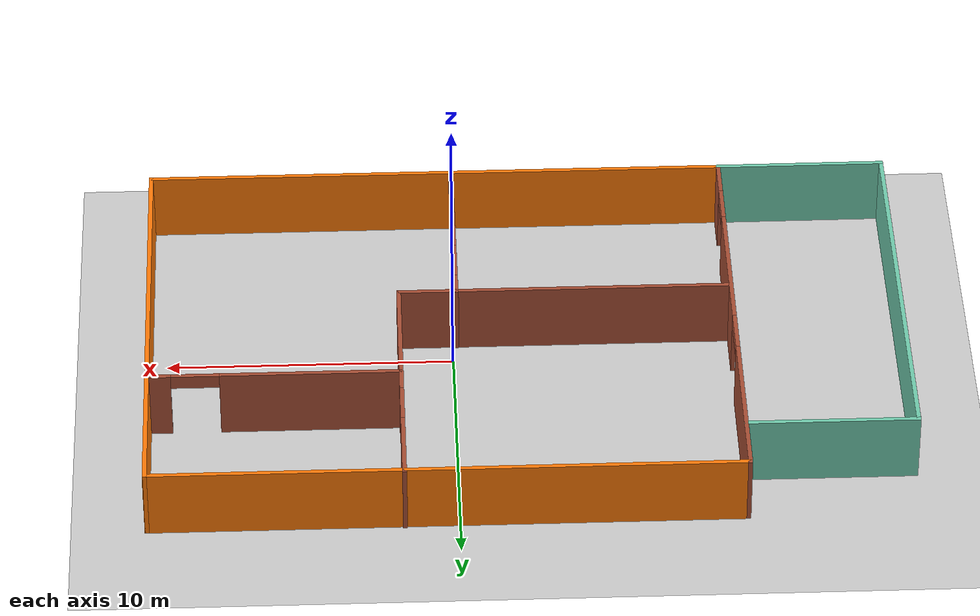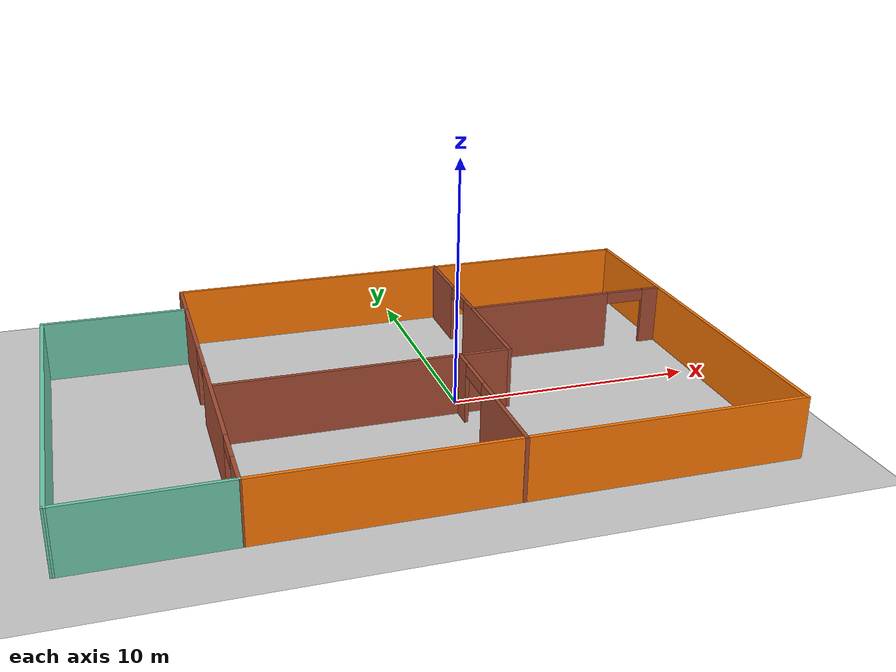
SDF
<sdf version="1.6">
 <world name="default">
  <light name="sun" type="directional">
   <pose>0 0 10 0 -0 0</pose>
   <diffuse>0.8 0.8 0.8 1</diffuse>
   <specular>0.1 0.1 0.1 1</specular>
   <attenuation>
    <range>1000</range>
    <constant>0.9</constant>
    <linear>0.01</linear>
    <quadratic>0.001</quadratic>
   </attenuation>
   <direction>-0.5 0.5 -1</direction>
  </light>
  <model name="ground_plane">
   <static>1</static>
   <link name="link">
    <collision name="collision">
     <geometry><plane><normal>0 0 1</normal><size>100 100</size></plane></geometry>
     <surface><friction><ode><mu>100</mu><mu2>50</mu2></ode></friction></surface>
    </collision>
    <visual name="visual">
     <cast_shadows>0</cast_shadows>
     <geometry><plane><normal>0 0 1</normal><size>100 100</size></plane></geometry>
     <material>
      <script><uri>file://media/materials/scripts/gazebo.material</uri><name>Gazebo/Grey</name></script>
     </material>
    </visual>
   </link>
  </model>
  <gravity>0 0 -9.8</gravity>
  <magnetic_field>6e-06 2.3e-05 -4.2e-05</magnetic_field>
  <atmosphere type="adiabatic"/>
  <physics name="default_physics" default="0" type="ode">
   <max_step_size>0.001</max_step_size>
   <real_time_factor>1</real_time_factor>
   <real_time_update_rate>1000</real_time_update_rate>
  </physics>
  <scene><ambient>0.4 0.4 0.4 1</ambient><background>0.7 0.7 0.7 1</background><shadows>1</shadows></scene>
  <spherical_coordinates>
   <surface_model>EARTH_WGS84</surface_model>
   <latitude_deg>0</latitude_deg>
   <longitude_deg>0</longitude_deg>
   <elevation>0</elevation>
   <heading_deg>0</heading_deg>
  </spherical_coordinates>
  <model name="house">
   <pose>-2.51992 0.508997 0 0 -0 0</pose>
   <link name="Wall_0">
    <collision name="Wall_0_Collision">
     <geometry><box><size>20.5 0.15 2.5</size></box></geometry>
     <pose>0 0 1.25 0 -0 0</pose>
    </collision>
    <visual name="Wall_0_Visual">
     <pose>0 0 1.25 0 -0 0</pose>
     <geometry><box><size>20.5 0.15 2.5</size></box></geometry>
     <material>
      <script><uri>file://media/materials/scripts/gazebo.material</uri><name>Gazebo/Grey</name></script>
      <ambient>0.996078 0.47451 0.0196078 1</ambient>
     </material>
    </visual>
    <pose>2.93147 -8.19362 0 0 -0 3.14159</pose>
   </link>
   <link name="Wall_10">
    <pose>8.73543 2.9415 0 0 -0 0</pose>
    <visual name="Wall_10_Visual_0">
     <pose>-1.24514 0 1.25 0 -0 0</pose>
     <geometry><box><size>6.25971 0.15 2.5</size></box></geometry>
     <material>
      <script><uri>file://media/materials/scripts/gazebo.material</uri><name>Gazebo/Bricks</name></script>
      <ambient>1 1 1 1</ambient>
     </material>
    </visual>
    <collision name="Wall_10_Collision_0">
     <geometry><box><size>6.25971 0.15 2.5</size></box></geometry>
     <pose>-1.24514 0 1.25 0 -0 0</pose>
    </collision>
    <visual name="Wall_10_Visual_1">
     <pose>3.96419 0 1.25 0 -0 0</pose>
     <geometry><box><size>0.82163 0.15 2.5</size></box></geometry>
     <material>
      <script><uri>file://media/materials/scripts/gazebo.material</uri><name>Gazebo/Bricks</name></script>
      <ambient>1 1 1 1</ambient>
     </material>
    </visual>
    <collision name="Wall_10_Collision_1">
     <geometry><box><size>0.82163 0.15 2.5</size></box></geometry>
     <pose>3.96419 0 1.25 0 -0 0</pose>
    </collision>
    <visual name="Wall_10_Visual_2">
     <pose>2.71904 0 2.25 0 -0 0</pose>
     <geometry><box><size>1.66866 0.15 0.5</size></box></geometry>
     <material>
      <script><uri>file://media/materials/scripts/gazebo.material</uri><name>Gazebo/Bricks</name></script>
      <ambient>1 1 1 1</ambient>
     </material>
    </visual>
    <collision name="Wall_10_Collision_2">
     <geometry><box><size>1.66866 0.15 0.5</size></box></geometry>
     <pose>2.71904 0 2.25 0 -0 0</pose>
    </collision>
   </link>
   <link name="Wall_12">
    <pose>2.3722 -4.77179 0 0 0 -1.5708</pose>
    <visual name="Wall_12_Visual_0">
     <pose>-3.00987 0 1.25 0 -0 0</pose>
     <geometry><box><size>0.980262 0.15 2.5</size></box></geometry>
     <material>
      <script><uri>file://media/materials/scripts/gazebo.material</uri><name>Gazebo/Bricks</name></script>
      <ambient>1 1 1 1</ambient>
     </material>
    </visual>
    <collision name="Wall_12_Collision_0">
     <geometry><box><size>0.980262 0.15 2.5</size></box></geometry>
     <pose>-3.00987 0 1.25 0 -0 0</pose>
    </collision>
    <visual name="Wall_12_Visual_1">
     <pose>1.34469 0 1.25 0 -0 0</pose>
     <geometry><box><size>4.31063 0.15 2.5</size></box></geometry>
     <material>
      <script><uri>file://media/materials/scripts/gazebo.material</uri><name>Gazebo/Bricks</name></script>
      <ambient>1 1 1 1</ambient>
     </material>
    </visual>
    <collision name="Wall_12_Collision_1">
     <geometry><box><size>4.31063 0.15 2.5</size></box></geometry>
     <pose>1.34469 0 1.25 0 -0 0</pose>
    </collision>
    <visual name="Wall_12_Visual_2">
     <pose>-1.66518 0 2.25 0 -0 0</pose>
     <geometry><box><size>1.70911 0.15 0.5</size></box></geometry>
     <material>
      <script><uri>file://media/materials/scripts/gazebo.material</uri><name>Gazebo/Bricks</name></script>
      <ambient>1 1 1 1</ambient>
     </material>
    </visual>
    <collision name="Wall_12_Collision_2">
     <geometry><box><size>1.70911 0.15 0.5</size></box></geometry>
     <pose>-1.66518 0 2.25 0 -0 0</pose>
    </collision>
   </link>
   <link name="Wall_14">
    <collision name="Wall_14_Collision">
     <geometry><box><size>6 0.15 2.5</size></box></geometry>
     <pose>0 0 1.25 0 -0 0</pose>
    </collision>
    <visual name="Wall_14_Visual">
     <pose>0 0 1.25 0 -0 0</pose>
     <geometry><box><size>6 0.15 2.5</size></box></geometry>
     <material>
      <script><uri>file://media/materials/scripts/gazebo.material</uri><name>Gazebo/Grey</name></script>
      <ambient>0.435294 0.796078 0.67451 1</ambient>
     </material>
    </visual>
    <pose>-10.1812 6.13749 0 0 -0 3.14159</pose>
   </link>
   <link name="Wall_15">
    <collision name="Wall_15_Collision">
     <geometry><box><size>14.5 0.15 2.5</size></box></geometry>
     <pose>0 0 1.25 0 -0 0</pose>
    </collision>
    <visual name="Wall_15_Visual">
     <pose>0 0 1.25 0 -0 0</pose>
     <geometry><box><size>14.5 0.15 2.5</size></box></geometry>
     <material>
      <script><uri>file://media/materials/scripts/gazebo.material</uri><name>Gazebo/Grey</name></script>
      <ambient>0.435294 0.796078 0.67451 1</ambient>
     </material>
    </visual>
    <pose>-13.1062 -1.03751 0 0 0 -1.5708</pose>
   </link>
   <link name="Wall_16">
    <collision name="Wall_16_Collision">
     <geometry><box><size>6.01273 0.15 2.5</size></box></geometry>
     <pose>0 0 1.25 0 -0 0</pose>
    </collision>
    <visual name="Wall_16_Visual">
     <pose>0 0 1.25 0 -0 0</pose>
     <geometry><box><size>6.01273 0.15 2.5</size></box></geometry>
     <material>
      <script><uri>file://media/materials/scripts/gazebo.material</uri><name>Gazebo/Grey</name></script>
      <ambient>0.435294 0.796078 0.67451 1</ambient>
     </material>
    </visual>
    <pose>-10.1749 -8.20307 0 0 -0 0.003222</pose>
   </link>
   <link name="Wall_3">
    <pose>-7.24353 -0.018619 0 0 -0 1.5708</pose>
    <visual name="Wall_3_Visual_0">
     <pose>-7.49199 0 1.25 0 -0 0</pose>
     <geometry><box><size>1.51602 0.15 2.5</size></box></geometry>
     <material>
      <script><uri>file://media/materials/scripts/gazebo.material</uri><name>Gazebo/Bricks</name></script>
      <ambient>0.435294 0.796078 0.67451 1</ambient>
     </material>
    </visual>
    <collision name="Wall_3_Collision_0">
     <geometry><box><size>1.51602 0.15 2.5</size></box></geometry>
     <pose>-7.49199 0 1.25 0 -0 0</pose>
    </collision>
    <visual name="Wall_3_Visual_1">
     <pose>-2.4407 0 1.25 0 -0 0</pose>
     <geometry><box><size>5.57289 0.15 2.5</size></box></geometry>
     <material>
      <script><uri>file://media/materials/scripts/gazebo.material</uri><name>Gazebo/Bricks</name></script>
      <ambient>0.435294 0.796078 0.67451 1</ambient>
     </material>
    </visual>
    <collision name="Wall_3_Collision_1">
     <geometry><box><size>5.57289 0.15 2.5</size></box></geometry>
     <pose>-2.4407 0 1.25 0 -0 0</pose>
    </collision>
    <visual name="Wall_3_Visual_2">
     <pose>5.15243 0 1.25 0 -0 0</pose>
     <geometry><box><size>6.19515 0.15 2.5</size></box></geometry>
     <material>
      <script><uri>file://media/materials/scripts/gazebo.material</uri><name>Gazebo/Bricks</name></script>
      <ambient>0.435294 0.796078 0.67451 1</ambient>
     </material>
    </visual>
    <collision name="Wall_3_Collision_2">
     <geometry><box><size>6.19515 0.15 2.5</size></box></geometry>
     <pose>5.15243 0 1.25 0 -0 0</pose>
    </collision>
    <visual name="Wall_3_Visual_3">
     <pose>-5.98057 0 2.25 0 -0 0</pose>
     <geometry><box><size>1.50683 0.15 0.5</size></box></geometry>
     <material>
      <script><uri>file://media/materials/scripts/gazebo.material</uri><name>Gazebo/Bricks</name></script>
      <ambient>0.435294 0.796078 0.67451 1</ambient>
     </material>
    </visual>
    <collision name="Wall_3_Collision_3">
     <geometry><box><size>1.50683 0.15 0.5</size></box></geometry>
     <pose>-5.98057 0 2.25 0 -0 0</pose>
    </collision>
    <visual name="Wall_3_Visual_4">
     <pose>1.2003 0 2.25 0 -0 0</pose>
     <geometry><box><size>1.70911 0.15 0.5</size></box></geometry>
     <material>
      <script><uri>file://media/materials/scripts/gazebo.material</uri><name>Gazebo/Bricks</name></script>
      <ambient>0.435294 0.796078 0.67451 1</ambient>
     </material>
    </visual>
    <collision name="Wall_3_Collision_4">
     <geometry><box><size>1.70911 0.15 0.5</size></box></geometry>
     <pose>1.2003 0 2.25 0 -0 0</pose>
    </collision>
   </link>
   <link name="Wall_4">
    <collision name="Wall_4_Collision">
     <geometry><box><size>20.5 0.15 2.5</size></box></geometry>
     <pose>0 0 1.25 0 -0 0</pose>
    </collision>
    <visual name="Wall_4_Visual">
     <pose>0 0 1.25 0 -0 0</pose>
     <geometry><box><size>20.5 0.15 2.5</size></box></geometry>
     <material>
      <script><uri>file://media/materials/scripts/gazebo.material</uri><name>Gazebo/Grey</name></script>
      <ambient>0.996078 0.47451 0.0196078 1</ambient>
     </material>
    </visual>
    <pose>2.93147 8.15638 0 0 -0 0</pose>
   </link>
   <link name="Wall_5">
    <collision name="Wall_5_Collision">
     <geometry><box><size>16.5 0.15 2.5</size></box></geometry>
     <pose>0 0 1.25 0 -0 0</pose>
    </collision>
    <visual name="Wall_5_Visual">
     <pose>0 0 1.25 0 -0 0</pose>
     <geometry><box><size>16.5 0.15 2.5</size></box></geometry>
     <material>
      <script><uri>file://media/materials/scripts/gazebo.material</uri><name>Gazebo/Grey</name></script>
      <ambient>0.996078 0.47451 0.0196078 1</ambient>
     </material>
    </visual>
    <pose>13.1065 -0.018619 0 0 0 -1.5708</pose>
   </link>
   <link name="Wall_7">
    <collision name="Wall_7_Collision">
     <geometry><box><size>11.75 0.15 2.5</size></box></geometry>
     <pose>0 0 1.25 0 -0 0</pose>
    </collision>
    <visual name="Wall_7_Visual">
     <pose>0 0 1.25 0 -0 0</pose>
     <geometry><box><size>11.75 0.15 2.5</size></box></geometry>
     <material>
      <script><uri>file://media/materials/scripts/gazebo.material</uri><name>Gazebo/Bricks</name></script>
      <ambient>1 1 1 1</ambient>
     </material>
    </visual>
    <pose>-1.41577 -1.38725 0 0 -0 0</pose>
   </link>
   <link name="Wall_8">
    <pose>4.38423 3.41275 0 0 -0 1.5708</pose>
    <visual name="Wall_8_Visual_0">
     <pose>-2.2205 0 1.25 0 -0 0</pose>
     <geometry><box><size>5.30901 0.15 2.5</size></box></geometry>
     <material>
      <script><uri>file://media/materials/scripts/gazebo.material</uri><name>Gazebo/Bricks</name></script>
      <ambient>1 1 1 1</ambient>
     </material>
    </visual>
    <collision name="Wall_8_Collision_0">
     <geometry><box><size>5.30901 0.15 2.5</size></box></geometry>
     <pose>-2.2205 0 1.25 0 -0 0</pose>
    </collision>
    <visual name="Wall_8_Visual_1">
     <pose>3.44838 0 1.25 0 -0 0</pose>
     <geometry><box><size>2.85325 0.15 2.5</size></box></geometry>
     <material>
      <script><uri>file://media/materials/scripts/gazebo.material</uri><name>Gazebo/Bricks</name></script>
      <ambient>1 1 1 1</ambient>
     </material>
    </visual>
    <collision name="Wall_8_Collision_1">
     <geometry><box><size>2.85325 0.15 2.5</size></box></geometry>
     <pose>3.44838 0 1.25 0 -0 0</pose>
    </collision>
    <visual name="Wall_8_Visual_2">
     <pose>1.22788 0 2.25 0 -0 0</pose>
     <geometry><box><size>1.58774 0.15 0.5</size></box></geometry>
     <material>
      <script><uri>file://media/materials/scripts/gazebo.material</uri><name>Gazebo/Bricks</name></script>
      <ambient>1 1 1 1</ambient>
     </material>
    </visual>
    <collision name="Wall_8_Collision_2">
     <geometry><box><size>1.58774 0.15 0.5</size></box></geometry>
     <pose>1.22788 0 2.25 0 -0 0</pose>
    </collision>
   </link>
   <static>1</static>
  </model>
 </world>
</sdf>
